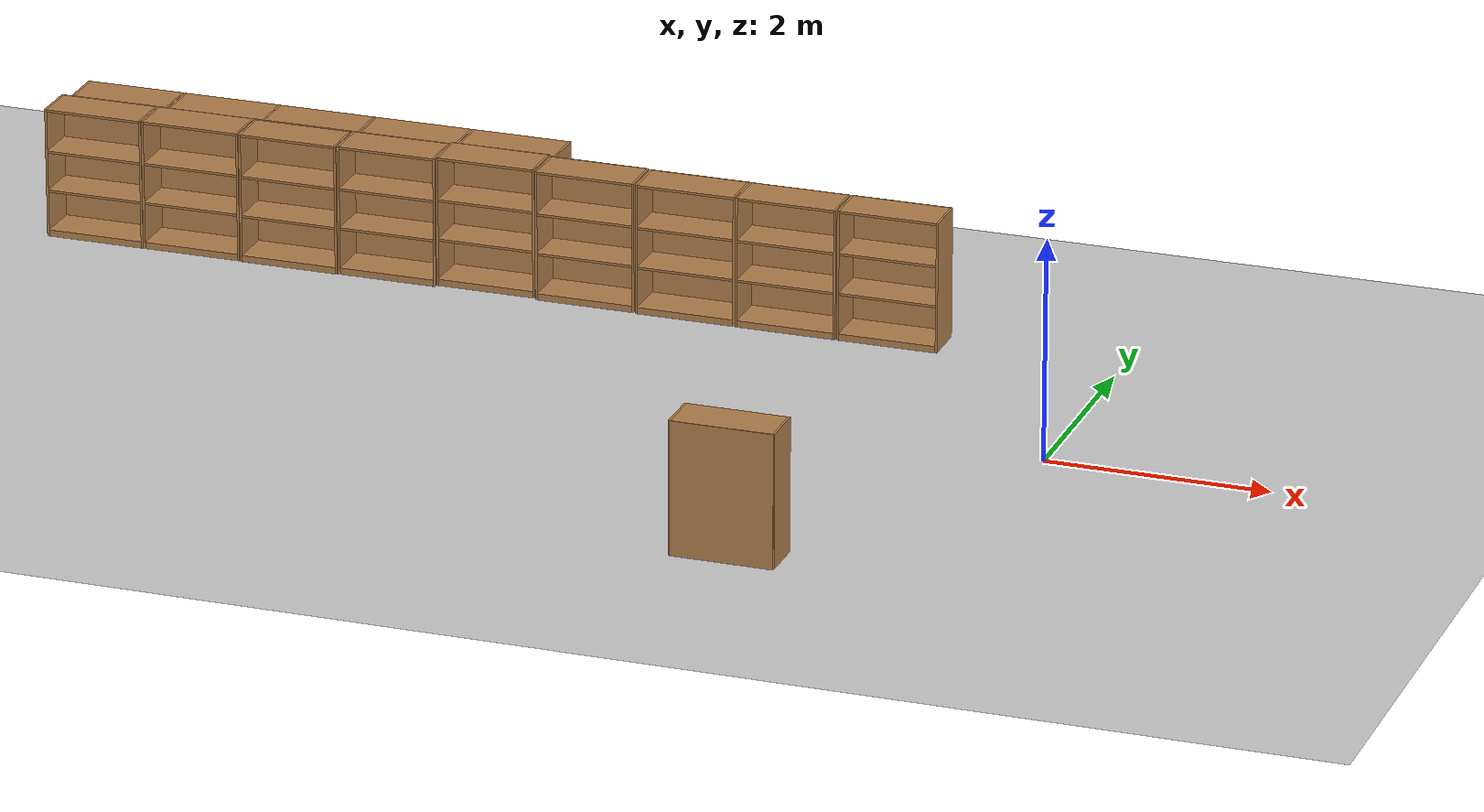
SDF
<sdf version="1.7">
 <world name="default">
  <model name="ground_plane">
   <static>1</static>
   <link name="link">
    <collision name="collision">
     <geometry><plane><normal>0 0 1</normal><size>100 100</size></plane></geometry>
     <surface><friction><ode><mu>100</mu><mu2>50</mu2></ode></friction></surface>
    </collision>
    <visual name="visual">
     <cast_shadows>0</cast_shadows>
     <geometry><plane><normal>0 0 1</normal><size>100 100</size></plane></geometry>
     <material>
      <script><uri>file://media/materials/scripts/gazebo.material</uri><name>Gazebo/Grey</name></script>
     </material>
    </visual>
   </link>
  </model>
  <model name="bookshelf_clone_0_clone_0_clone_clone_clone_clone_clone_0">
   <static>1</static>
   <link name="link">
    <inertial><mass>1</mass></inertial>
    <collision name="back">
     <pose>0 0.005 0.6 0 -0 0</pose>
     <geometry><box><size>0.9 0.01 1.2</size></box></geometry>
    </collision>
    <visual name="visual1">
     <pose>0 0.005 0.6 0 -0 0</pose>
     <geometry><box><size>0.9 0.01 1.2</size></box></geometry>
     <material>
      <script><uri>file://media/materials/scripts/gazebo.material</uri><name>Gazebo/Wood</name></script>
     </material>
    </visual>
    <collision name="left_side">
     <pose>0.45 -0.195 0.6 0 -0 0</pose>
     <geometry><box><size>0.02 0.4 1.2</size></box></geometry>
    </collision>
    <visual name="visual2">
     <pose>0.45 -0.195 0.6 0 -0 0</pose>
     <geometry><box><size>0.02 0.4 1.2</size></box></geometry>
     <material>
      <script><uri>file://media/materials/scripts/gazebo.material</uri><name>Gazebo/Wood</name></script>
     </material>
    </visual>
    <collision name="right_side">
     <pose>-0.45 -0.195 0.6 0 -0 0</pose>
     <geometry><box><size>0.02 0.4 1.2</size></box></geometry>
    </collision>
    <visual name="visual3">
     <pose>-0.45 -0.195 0.6 0 -0 0</pose>
     <geometry><box><size>0.02 0.4 1.2</size></box></geometry>
     <material>
      <script><uri>file://media/materials/scripts/gazebo.material</uri><name>Gazebo/Wood</name></script>
     </material>
    </visual>
    <collision name="bottom">
     <pose>0 -0.195 0.03 0 -0 0</pose>
     <geometry><box><size>0.88 0.4 0.06</size></box></geometry>
    </collision>
    <visual name="visual4">
     <pose>0 -0.195 0.03 0 -0 0</pose>
     <geometry><box><size>0.88 0.4 0.06</size></box></geometry>
     <material>
      <script><uri>file://media/materials/scripts/gazebo.material</uri><name>Gazebo/Wood</name></script>
     </material>
    </visual>
    <collision name="top">
     <pose>0 -0.195 1.19 0 -0 0</pose>
     <geometry><box><size>0.88 0.4 0.02</size></box></geometry>
    </collision>
    <visual name="visual5">
     <pose>0 -0.195 1.19 0 -0 0</pose>
     <geometry><box><size>0.88 0.4 0.02</size></box></geometry>
     <material>
      <script><uri>file://media/materials/scripts/gazebo.material</uri><name>Gazebo/Wood</name></script>
     </material>
    </visual>
    <collision name="low_shelf">
     <pose>0 -0.195 0.43 0 -0 0</pose>
     <geometry><box><size>0.88 0.4 0.02</size></box></geometry>
    </collision>
    <visual name="visual6">
     <pose>0 -0.195 0.43 0 -0 0</pose>
     <geometry><box><size>0.88 0.4 0.02</size></box></geometry>
     <material>
      <script><uri>file://media/materials/scripts/gazebo.material</uri><name>Gazebo/Wood</name></script>
     </material>
    </visual>
    <collision name="high_shelf">
     <pose>0 -0.195 0.8 0 -0 0</pose>
     <geometry><box><size>0.88 0.4 0.02</size></box></geometry>
    </collision>
    <visual name="visual7">
     <pose>0 -0.195 0.8 0 -0 0</pose>
     <geometry><box><size>0.88 0.4 0.02</size></box></geometry>
     <material>
      <script><uri>file://media/materials/scripts/gazebo.material</uri><name>Gazebo/Wood</name></script>
     </material>
    </visual>
   </link>
   <pose>-1.84141 -2.94994 0 0 0 -3.14107</pose>
  </model>
  <model name="bookshelf_clone_0_clone_0_clone_clone_clone_clone_clone_1_clone_clone_clone_clone_clone_clone_clone_clone">
   <static>1</static>
   <link name="link">
    <inertial><mass>1</mass></inertial>
    <collision name="back">
     <pose>0 0.005 0.6 0 -0 0</pose>
     <geometry><box><size>0.9 0.01 1.2</size></box></geometry>
    </collision>
    <visual name="visual1">
     <pose>0 0.005 0.6 0 -0 0</pose>
     <geometry><box><size>0.9 0.01 1.2</size></box></geometry>
     <material>
      <script><uri>file://media/materials/scripts/gazebo.material</uri><name>Gazebo/Wood</name></script>
     </material>
    </visual>
    <collision name="left_side">
     <pose>0.45 -0.195 0.6 0 -0 0</pose>
     <geometry><box><size>0.02 0.4 1.2</size></box></geometry>
    </collision>
    <visual name="visual2">
     <pose>0.45 -0.195 0.6 0 -0 0</pose>
     <geometry><box><size>0.02 0.4 1.2</size></box></geometry>
     <material>
      <script><uri>file://media/materials/scripts/gazebo.material</uri><name>Gazebo/Wood</name></script>
     </material>
    </visual>
    <collision name="right_side">
     <pose>-0.45 -0.195 0.6 0 -0 0</pose>
     <geometry><box><size>0.02 0.4 1.2</size></box></geometry>
    </collision>
    <visual name="visual3">
     <pose>-0.45 -0.195 0.6 0 -0 0</pose>
     <geometry><box><size>0.02 0.4 1.2</size></box></geometry>
     <material>
      <script><uri>file://media/materials/scripts/gazebo.material</uri><name>Gazebo/Wood</name></script>
     </material>
    </visual>
    <collision name="bottom">
     <pose>0 -0.195 0.03 0 -0 0</pose>
     <geometry><box><size>0.88 0.4 0.06</size></box></geometry>
    </collision>
    <visual name="visual4">
     <pose>0 -0.195 0.03 0 -0 0</pose>
     <geometry><box><size>0.88 0.4 0.06</size></box></geometry>
     <material>
      <script><uri>file://media/materials/scripts/gazebo.material</uri><name>Gazebo/Wood</name></script>
     </material>
    </visual>
    <collision name="top">
     <pose>0 -0.195 1.19 0 -0 0</pose>
     <geometry><box><size>0.88 0.4 0.02</size></box></geometry>
    </collision>
    <visual name="visual5">
     <pose>0 -0.195 1.19 0 -0 0</pose>
     <geometry><box><size>0.88 0.4 0.02</size></box></geometry>
     <material>
      <script><uri>file://media/materials/scripts/gazebo.material</uri><name>Gazebo/Wood</name></script>
     </material>
    </visual>
    <collision name="low_shelf">
     <pose>0 -0.195 0.43 0 -0 0</pose>
     <geometry><box><size>0.88 0.4 0.02</size></box></geometry>
    </collision>
    <visual name="visual6">
     <pose>0 -0.195 0.43 0 -0 0</pose>
     <geometry><box><size>0.88 0.4 0.02</size></box></geometry>
     <material>
      <script><uri>file://media/materials/scripts/gazebo.material</uri><name>Gazebo/Wood</name></script>
     </material>
    </visual>
    <collision name="high_shelf">
     <pose>0 -0.195 0.8 0 -0 0</pose>
     <geometry><box><size>0.88 0.4 0.02</size></box></geometry>
    </collision>
    <visual name="visual7">
     <pose>0 -0.195 0.8 0 -0 0</pose>
     <geometry><box><size>0.88 0.4 0.02</size></box></geometry>
     <material>
      <script><uri>file://media/materials/scripts/gazebo.material</uri><name>Gazebo/Wood</name></script>
     </material>
    </visual>
   </link>
   <pose>-9.47884 2.4081 0.004614 0 -0 0.000147</pose>
  </model>
  <model name="bookshelf_clone_0_clone_0_clone_clone_clone_clone_clone_1_clone_clone_clone_clone_clone_clone_clone_clone_clone">
   <static>1</static>
   <link name="link">
    <inertial><mass>1</mass></inertial>
    <collision name="back">
     <pose>0 0.005 0.6 0 -0 0</pose>
     <geometry><box><size>0.9 0.01 1.2</size></box></geometry>
    </collision>
    <visual name="visual1">
     <pose>0 0.005 0.6 0 -0 0</pose>
     <geometry><box><size>0.9 0.01 1.2</size></box></geometry>
     <material>
      <script><uri>file://media/materials/scripts/gazebo.material</uri><name>Gazebo/Wood</name></script>
     </material>
    </visual>
    <collision name="left_side">
     <pose>0.45 -0.195 0.6 0 -0 0</pose>
     <geometry><box><size>0.02 0.4 1.2</size></box></geometry>
    </collision>
    <visual name="visual2">
     <pose>0.45 -0.195 0.6 0 -0 0</pose>
     <geometry><box><size>0.02 0.4 1.2</size></box></geometry>
     <material>
      <script><uri>file://media/materials/scripts/gazebo.material</uri><name>Gazebo/Wood</name></script>
     </material>
    </visual>
    <collision name="right_side">
     <pose>-0.45 -0.195 0.6 0 -0 0</pose>
     <geometry><box><size>0.02 0.4 1.2</size></box></geometry>
    </collision>
    <visual name="visual3">
     <pose>-0.45 -0.195 0.6 0 -0 0</pose>
     <geometry><box><size>0.02 0.4 1.2</size></box></geometry>
     <material>
      <script><uri>file://media/materials/scripts/gazebo.material</uri><name>Gazebo/Wood</name></script>
     </material>
    </visual>
    <collision name="bottom">
     <pose>0 -0.195 0.03 0 -0 0</pose>
     <geometry><box><size>0.88 0.4 0.06</size></box></geometry>
    </collision>
    <visual name="visual4">
     <pose>0 -0.195 0.03 0 -0 0</pose>
     <geometry><box><size>0.88 0.4 0.06</size></box></geometry>
     <material>
      <script><uri>file://media/materials/scripts/gazebo.material</uri><name>Gazebo/Wood</name></script>
     </material>
    </visual>
    <collision name="top">
     <pose>0 -0.195 1.19 0 -0 0</pose>
     <geometry><box><size>0.88 0.4 0.02</size></box></geometry>
    </collision>
    <visual name="visual5">
     <pose>0 -0.195 1.19 0 -0 0</pose>
     <geometry><box><size>0.88 0.4 0.02</size></box></geometry>
     <material>
      <script><uri>file://media/materials/scripts/gazebo.material</uri><name>Gazebo/Wood</name></script>
     </material>
    </visual>
    <collision name="low_shelf">
     <pose>0 -0.195 0.43 0 -0 0</pose>
     <geometry><box><size>0.88 0.4 0.02</size></box></geometry>
    </collision>
    <visual name="visual6">
     <pose>0 -0.195 0.43 0 -0 0</pose>
     <geometry><box><size>0.88 0.4 0.02</size></box></geometry>
     <material>
      <script><uri>file://media/materials/scripts/gazebo.material</uri><name>Gazebo/Wood</name></script>
     </material>
    </visual>
    <collision name="high_shelf">
     <pose>0 -0.195 0.8 0 -0 0</pose>
     <geometry><box><size>0.88 0.4 0.02</size></box></geometry>
    </collision>
    <visual name="visual7">
     <pose>0 -0.195 0.8 0 -0 0</pose>
     <geometry><box><size>0.88 0.4 0.02</size></box></geometry>
     <material>
      <script><uri>file://media/materials/scripts/gazebo.material</uri><name>Gazebo/Wood</name></script>
     </material>
    </visual>
   </link>
   <pose>-8.55697 2.41061 0.004614 0 -0 0.000147</pose>
  </model>
  <model name="bookshelf_clone_0_clone_0_clone_clone_clone_clone_clone_1_clone_clone_clone_clone_clone_clone_clone_clone_clone_clone">
   <static>1</static>
   <link name="link">
    <inertial><mass>1</mass></inertial>
    <collision name="back">
     <pose>0 0.005 0.6 0 -0 0</pose>
     <geometry><box><size>0.9 0.01 1.2</size></box></geometry>
    </collision>
    <visual name="visual1">
     <pose>0 0.005 0.6 0 -0 0</pose>
     <geometry><box><size>0.9 0.01 1.2</size></box></geometry>
     <material>
      <script><uri>file://media/materials/scripts/gazebo.material</uri><name>Gazebo/Wood</name></script>
     </material>
    </visual>
    <collision name="left_side">
     <pose>0.45 -0.195 0.6 0 -0 0</pose>
     <geometry><box><size>0.02 0.4 1.2</size></box></geometry>
    </collision>
    <visual name="visual2">
     <pose>0.45 -0.195 0.6 0 -0 0</pose>
     <geometry><box><size>0.02 0.4 1.2</size></box></geometry>
     <material>
      <script><uri>file://media/materials/scripts/gazebo.material</uri><name>Gazebo/Wood</name></script>
     </material>
    </visual>
    <collision name="right_side">
     <pose>-0.45 -0.195 0.6 0 -0 0</pose>
     <geometry><box><size>0.02 0.4 1.2</size></box></geometry>
    </collision>
    <visual name="visual3">
     <pose>-0.45 -0.195 0.6 0 -0 0</pose>
     <geometry><box><size>0.02 0.4 1.2</size></box></geometry>
     <material>
      <script><uri>file://media/materials/scripts/gazebo.material</uri><name>Gazebo/Wood</name></script>
     </material>
    </visual>
    <collision name="bottom">
     <pose>0 -0.195 0.03 0 -0 0</pose>
     <geometry><box><size>0.88 0.4 0.06</size></box></geometry>
    </collision>
    <visual name="visual4">
     <pose>0 -0.195 0.03 0 -0 0</pose>
     <geometry><box><size>0.88 0.4 0.06</size></box></geometry>
     <material>
      <script><uri>file://media/materials/scripts/gazebo.material</uri><name>Gazebo/Wood</name></script>
     </material>
    </visual>
    <collision name="top">
     <pose>0 -0.195 1.19 0 -0 0</pose>
     <geometry><box><size>0.88 0.4 0.02</size></box></geometry>
    </collision>
    <visual name="visual5">
     <pose>0 -0.195 1.19 0 -0 0</pose>
     <geometry><box><size>0.88 0.4 0.02</size></box></geometry>
     <material>
      <script><uri>file://media/materials/scripts/gazebo.material</uri><name>Gazebo/Wood</name></script>
     </material>
    </visual>
    <collision name="low_shelf">
     <pose>0 -0.195 0.43 0 -0 0</pose>
     <geometry><box><size>0.88 0.4 0.02</size></box></geometry>
    </collision>
    <visual name="visual6">
     <pose>0 -0.195 0.43 0 -0 0</pose>
     <geometry><box><size>0.88 0.4 0.02</size></box></geometry>
     <material>
      <script><uri>file://media/materials/scripts/gazebo.material</uri><name>Gazebo/Wood</name></script>
     </material>
    </visual>
    <collision name="high_shelf">
     <pose>0 -0.195 0.8 0 -0 0</pose>
     <geometry><box><size>0.88 0.4 0.02</size></box></geometry>
    </collision>
    <visual name="visual7">
     <pose>0 -0.195 0.8 0 -0 0</pose>
     <geometry><box><size>0.88 0.4 0.02</size></box></geometry>
     <material>
      <script><uri>file://media/materials/scripts/gazebo.material</uri><name>Gazebo/Wood</name></script>
     </material>
    </visual>
   </link>
   <pose>-7.627 2.40051 0.004614 0 -0 0.000147</pose>
  </model>
  <model name="bookshelf_clone_0_clone_0_clone_clone_clone_clone_clone_1_clone_clone_clone_clone_clone_clone_clone_clone_clone_clone_0">
   <static>1</static>
   <link name="link">
    <inertial><mass>1</mass></inertial>
    <collision name="back">
     <pose>0 0.005 0.6 0 -0 0</pose>
     <geometry><box><size>0.9 0.01 1.2</size></box></geometry>
    </collision>
    <visual name="visual1">
     <pose>0 0.005 0.6 0 -0 0</pose>
     <geometry><box><size>0.9 0.01 1.2</size></box></geometry>
     <material>
      <script><uri>file://media/materials/scripts/gazebo.material</uri><name>Gazebo/Wood</name></script>
     </material>
    </visual>
    <collision name="left_side">
     <pose>0.45 -0.195 0.6 0 -0 0</pose>
     <geometry><box><size>0.02 0.4 1.2</size></box></geometry>
    </collision>
    <visual name="visual2">
     <pose>0.45 -0.195 0.6 0 -0 0</pose>
     <geometry><box><size>0.02 0.4 1.2</size></box></geometry>
     <material>
      <script><uri>file://media/materials/scripts/gazebo.material</uri><name>Gazebo/Wood</name></script>
     </material>
    </visual>
    <collision name="right_side">
     <pose>-0.45 -0.195 0.6 0 -0 0</pose>
     <geometry><box><size>0.02 0.4 1.2</size></box></geometry>
    </collision>
    <visual name="visual3">
     <pose>-0.45 -0.195 0.6 0 -0 0</pose>
     <geometry><box><size>0.02 0.4 1.2</size></box></geometry>
     <material>
      <script><uri>file://media/materials/scripts/gazebo.material</uri><name>Gazebo/Wood</name></script>
     </material>
    </visual>
    <collision name="bottom">
     <pose>0 -0.195 0.03 0 -0 0</pose>
     <geometry><box><size>0.88 0.4 0.06</size></box></geometry>
    </collision>
    <visual name="visual4">
     <pose>0 -0.195 0.03 0 -0 0</pose>
     <geometry><box><size>0.88 0.4 0.06</size></box></geometry>
     <material>
      <script><uri>file://media/materials/scripts/gazebo.material</uri><name>Gazebo/Wood</name></script>
     </material>
    </visual>
    <collision name="top">
     <pose>0 -0.195 1.19 0 -0 0</pose>
     <geometry><box><size>0.88 0.4 0.02</size></box></geometry>
    </collision>
    <visual name="visual5">
     <pose>0 -0.195 1.19 0 -0 0</pose>
     <geometry><box><size>0.88 0.4 0.02</size></box></geometry>
     <material>
      <script><uri>file://media/materials/scripts/gazebo.material</uri><name>Gazebo/Wood</name></script>
     </material>
    </visual>
    <collision name="low_shelf">
     <pose>0 -0.195 0.43 0 -0 0</pose>
     <geometry><box><size>0.88 0.4 0.02</size></box></geometry>
    </collision>
    <visual name="visual6">
     <pose>0 -0.195 0.43 0 -0 0</pose>
     <geometry><box><size>0.88 0.4 0.02</size></box></geometry>
     <material>
      <script><uri>file://media/materials/scripts/gazebo.material</uri><name>Gazebo/Wood</name></script>
     </material>
    </visual>
    <collision name="high_shelf">
     <pose>0 -0.195 0.8 0 -0 0</pose>
     <geometry><box><size>0.88 0.4 0.02</size></box></geometry>
    </collision>
    <visual name="visual7">
     <pose>0 -0.195 0.8 0 -0 0</pose>
     <geometry><box><size>0.88 0.4 0.02</size></box></geometry>
     <material>
      <script><uri>file://media/materials/scripts/gazebo.material</uri><name>Gazebo/Wood</name></script>
     </material>
    </visual>
   </link>
   <pose>-6.70097 2.41106 0.004614 0 -0 0.000147</pose>
  </model>
  <model name="bookshelf_clone_0_clone_0_clone_clone_clone_clone_clone_1_clone_clone_clone_clone_clone_clone_clone_clone_clone_clone_0_clone">
   <static>1</static>
   <link name="link">
    <inertial><mass>1</mass></inertial>
    <collision name="back">
     <pose>0 0.005 0.6 0 -0 0</pose>
     <geometry><box><size>0.9 0.01 1.2</size></box></geometry>
    </collision>
    <visual name="visual1">
     <pose>0 0.005 0.6 0 -0 0</pose>
     <geometry><box><size>0.9 0.01 1.2</size></box></geometry>
     <material>
      <script><uri>file://media/materials/scripts/gazebo.material</uri><name>Gazebo/Wood</name></script>
     </material>
    </visual>
    <collision name="left_side">
     <pose>0.45 -0.195 0.6 0 -0 0</pose>
     <geometry><box><size>0.02 0.4 1.2</size></box></geometry>
    </collision>
    <visual name="visual2">
     <pose>0.45 -0.195 0.6 0 -0 0</pose>
     <geometry><box><size>0.02 0.4 1.2</size></box></geometry>
     <material>
      <script><uri>file://media/materials/scripts/gazebo.material</uri><name>Gazebo/Wood</name></script>
     </material>
    </visual>
    <collision name="right_side">
     <pose>-0.45 -0.195 0.6 0 -0 0</pose>
     <geometry><box><size>0.02 0.4 1.2</size></box></geometry>
    </collision>
    <visual name="visual3">
     <pose>-0.45 -0.195 0.6 0 -0 0</pose>
     <geometry><box><size>0.02 0.4 1.2</size></box></geometry>
     <material>
      <script><uri>file://media/materials/scripts/gazebo.material</uri><name>Gazebo/Wood</name></script>
     </material>
    </visual>
    <collision name="bottom">
     <pose>0 -0.195 0.03 0 -0 0</pose>
     <geometry><box><size>0.88 0.4 0.06</size></box></geometry>
    </collision>
    <visual name="visual4">
     <pose>0 -0.195 0.03 0 -0 0</pose>
     <geometry><box><size>0.88 0.4 0.06</size></box></geometry>
     <material>
      <script><uri>file://media/materials/scripts/gazebo.material</uri><name>Gazebo/Wood</name></script>
     </material>
    </visual>
    <collision name="top">
     <pose>0 -0.195 1.19 0 -0 0</pose>
     <geometry><box><size>0.88 0.4 0.02</size></box></geometry>
    </collision>
    <visual name="visual5">
     <pose>0 -0.195 1.19 0 -0 0</pose>
     <geometry><box><size>0.88 0.4 0.02</size></box></geometry>
     <material>
      <script><uri>file://media/materials/scripts/gazebo.material</uri><name>Gazebo/Wood</name></script>
     </material>
    </visual>
    <collision name="low_shelf">
     <pose>0 -0.195 0.43 0 -0 0</pose>
     <geometry><box><size>0.88 0.4 0.02</size></box></geometry>
    </collision>
    <visual name="visual6">
     <pose>0 -0.195 0.43 0 -0 0</pose>
     <geometry><box><size>0.88 0.4 0.02</size></box></geometry>
     <material>
      <script><uri>file://media/materials/scripts/gazebo.material</uri><name>Gazebo/Wood</name></script>
     </material>
    </visual>
    <collision name="high_shelf">
     <pose>0 -0.195 0.8 0 -0 0</pose>
     <geometry><box><size>0.88 0.4 0.02</size></box></geometry>
    </collision>
    <visual name="visual7">
     <pose>0 -0.195 0.8 0 -0 0</pose>
     <geometry><box><size>0.88 0.4 0.02</size></box></geometry>
     <material>
      <script><uri>file://media/materials/scripts/gazebo.material</uri><name>Gazebo/Wood</name></script>
     </material>
    </visual>
   </link>
   <pose>-5.7728 2.41169 0.019643 0 -0 0.000147</pose>
  </model>
  <model name="bookshelf_clone_0_clone_0_clone_clone_clone_clone_clone_1_clone_clone_clone_clone_clone_clone_clone_clone_clone_clone_0_clone_clone">
   <static>1</static>
   <link name="link">
    <inertial><mass>1</mass></inertial>
    <collision name="back">
     <pose>0 0.005 0.6 0 -0 0</pose>
     <geometry><box><size>0.9 0.01 1.2</size></box></geometry>
    </collision>
    <visual name="visual1">
     <pose>0 0.005 0.6 0 -0 0</pose>
     <geometry><box><size>0.9 0.01 1.2</size></box></geometry>
     <material>
      <script><uri>file://media/materials/scripts/gazebo.material</uri><name>Gazebo/Wood</name></script>
     </material>
    </visual>
    <collision name="left_side">
     <pose>0.45 -0.195 0.6 0 -0 0</pose>
     <geometry><box><size>0.02 0.4 1.2</size></box></geometry>
    </collision>
    <visual name="visual2">
     <pose>0.45 -0.195 0.6 0 -0 0</pose>
     <geometry><box><size>0.02 0.4 1.2</size></box></geometry>
     <material>
      <script><uri>file://media/materials/scripts/gazebo.material</uri><name>Gazebo/Wood</name></script>
     </material>
    </visual>
    <collision name="right_side">
     <pose>-0.45 -0.195 0.6 0 -0 0</pose>
     <geometry><box><size>0.02 0.4 1.2</size></box></geometry>
    </collision>
    <visual name="visual3">
     <pose>-0.45 -0.195 0.6 0 -0 0</pose>
     <geometry><box><size>0.02 0.4 1.2</size></box></geometry>
     <material>
      <script><uri>file://media/materials/scripts/gazebo.material</uri><name>Gazebo/Wood</name></script>
     </material>
    </visual>
    <collision name="bottom">
     <pose>0 -0.195 0.03 0 -0 0</pose>
     <geometry><box><size>0.88 0.4 0.06</size></box></geometry>
    </collision>
    <visual name="visual4">
     <pose>0 -0.195 0.03 0 -0 0</pose>
     <geometry><box><size>0.88 0.4 0.06</size></box></geometry>
     <material>
      <script><uri>file://media/materials/scripts/gazebo.material</uri><name>Gazebo/Wood</name></script>
     </material>
    </visual>
    <collision name="top">
     <pose>0 -0.195 1.19 0 -0 0</pose>
     <geometry><box><size>0.88 0.4 0.02</size></box></geometry>
    </collision>
    <visual name="visual5">
     <pose>0 -0.195 1.19 0 -0 0</pose>
     <geometry><box><size>0.88 0.4 0.02</size></box></geometry>
     <material>
      <script><uri>file://media/materials/scripts/gazebo.material</uri><name>Gazebo/Wood</name></script>
     </material>
    </visual>
    <collision name="low_shelf">
     <pose>0 -0.195 0.43 0 -0 0</pose>
     <geometry><box><size>0.88 0.4 0.02</size></box></geometry>
    </collision>
    <visual name="visual6">
     <pose>0 -0.195 0.43 0 -0 0</pose>
     <geometry><box><size>0.88 0.4 0.02</size></box></geometry>
     <material>
      <script><uri>file://media/materials/scripts/gazebo.material</uri><name>Gazebo/Wood</name></script>
     </material>
    </visual>
    <collision name="high_shelf">
     <pose>0 -0.195 0.8 0 -0 0</pose>
     <geometry><box><size>0.88 0.4 0.02</size></box></geometry>
    </collision>
    <visual name="visual7">
     <pose>0 -0.195 0.8 0 -0 0</pose>
     <geometry><box><size>0.88 0.4 0.02</size></box></geometry>
     <material>
      <script><uri>file://media/materials/scripts/gazebo.material</uri><name>Gazebo/Wood</name></script>
     </material>
    </visual>
   </link>
   <pose>-4.84957 2.41459 0.004614 0 -0 0.000147</pose>
  </model>
  <model name="bookshelf_clone_0_clone_0_clone_clone_clone_clone_clone_1_clone_clone_clone_clone_clone_clone_clone_clone_clone_clone_0_clone_clone_clone">
   <static>1</static>
   <link name="link">
    <inertial><mass>1</mass></inertial>
    <collision name="back">
     <pose>0 0.005 0.6 0 -0 0</pose>
     <geometry><box><size>0.9 0.01 1.2</size></box></geometry>
    </collision>
    <visual name="visual1">
     <pose>0 0.005 0.6 0 -0 0</pose>
     <geometry><box><size>0.9 0.01 1.2</size></box></geometry>
     <material>
      <script><uri>file://media/materials/scripts/gazebo.material</uri><name>Gazebo/Wood</name></script>
     </material>
    </visual>
    <collision name="left_side">
     <pose>0.45 -0.195 0.6 0 -0 0</pose>
     <geometry><box><size>0.02 0.4 1.2</size></box></geometry>
    </collision>
    <visual name="visual2">
     <pose>0.45 -0.195 0.6 0 -0 0</pose>
     <geometry><box><size>0.02 0.4 1.2</size></box></geometry>
     <material>
      <script><uri>file://media/materials/scripts/gazebo.material</uri><name>Gazebo/Wood</name></script>
     </material>
    </visual>
    <collision name="right_side">
     <pose>-0.45 -0.195 0.6 0 -0 0</pose>
     <geometry><box><size>0.02 0.4 1.2</size></box></geometry>
    </collision>
    <visual name="visual3">
     <pose>-0.45 -0.195 0.6 0 -0 0</pose>
     <geometry><box><size>0.02 0.4 1.2</size></box></geometry>
     <material>
      <script><uri>file://media/materials/scripts/gazebo.material</uri><name>Gazebo/Wood</name></script>
     </material>
    </visual>
    <collision name="bottom">
     <pose>0 -0.195 0.03 0 -0 0</pose>
     <geometry><box><size>0.88 0.4 0.06</size></box></geometry>
    </collision>
    <visual name="visual4">
     <pose>0 -0.195 0.03 0 -0 0</pose>
     <geometry><box><size>0.88 0.4 0.06</size></box></geometry>
     <material>
      <script><uri>file://media/materials/scripts/gazebo.material</uri><name>Gazebo/Wood</name></script>
     </material>
    </visual>
    <collision name="top">
     <pose>0 -0.195 1.19 0 -0 0</pose>
     <geometry><box><size>0.88 0.4 0.02</size></box></geometry>
    </collision>
    <visual name="visual5">
     <pose>0 -0.195 1.19 0 -0 0</pose>
     <geometry><box><size>0.88 0.4 0.02</size></box></geometry>
     <material>
      <script><uri>file://media/materials/scripts/gazebo.material</uri><name>Gazebo/Wood</name></script>
     </material>
    </visual>
    <collision name="low_shelf">
     <pose>0 -0.195 0.43 0 -0 0</pose>
     <geometry><box><size>0.88 0.4 0.02</size></box></geometry>
    </collision>
    <visual name="visual6">
     <pose>0 -0.195 0.43 0 -0 0</pose>
     <geometry><box><size>0.88 0.4 0.02</size></box></geometry>
     <material>
      <script><uri>file://media/materials/scripts/gazebo.material</uri><name>Gazebo/Wood</name></script>
     </material>
    </visual>
    <collision name="high_shelf">
     <pose>0 -0.195 0.8 0 -0 0</pose>
     <geometry><box><size>0.88 0.4 0.02</size></box></geometry>
    </collision>
    <visual name="visual7">
     <pose>0 -0.195 0.8 0 -0 0</pose>
     <geometry><box><size>0.88 0.4 0.02</size></box></geometry>
     <material>
      <script><uri>file://media/materials/scripts/gazebo.material</uri><name>Gazebo/Wood</name></script>
     </material>
    </visual>
   </link>
   <pose>-3.91403 2.40103 0.004614 0 -0 0.000147</pose>
  </model>
  <model name="bookshelf_clone_0_clone_0_clone_clone_clone_clone_clone_1_clone_clone_clone_clone_clone_clone_clone_clone_clone_clone_0_clone_clone_clone_clone">
   <static>1</static>
   <link name="link">
    <inertial><mass>1</mass></inertial>
    <collision name="back">
     <pose>0 0.005 0.6 0 -0 0</pose>
     <geometry><box><size>0.9 0.01 1.2</size></box></geometry>
    </collision>
    <visual name="visual1">
     <pose>0 0.005 0.6 0 -0 0</pose>
     <geometry><box><size>0.9 0.01 1.2</size></box></geometry>
     <material>
      <script><uri>file://media/materials/scripts/gazebo.material</uri><name>Gazebo/Wood</name></script>
     </material>
    </visual>
    <collision name="left_side">
     <pose>0.45 -0.195 0.6 0 -0 0</pose>
     <geometry><box><size>0.02 0.4 1.2</size></box></geometry>
    </collision>
    <visual name="visual2">
     <pose>0.45 -0.195 0.6 0 -0 0</pose>
     <geometry><box><size>0.02 0.4 1.2</size></box></geometry>
     <material>
      <script><uri>file://media/materials/scripts/gazebo.material</uri><name>Gazebo/Wood</name></script>
     </material>
    </visual>
    <collision name="right_side">
     <pose>-0.45 -0.195 0.6 0 -0 0</pose>
     <geometry><box><size>0.02 0.4 1.2</size></box></geometry>
    </collision>
    <visual name="visual3">
     <pose>-0.45 -0.195 0.6 0 -0 0</pose>
     <geometry><box><size>0.02 0.4 1.2</size></box></geometry>
     <material>
      <script><uri>file://media/materials/scripts/gazebo.material</uri><name>Gazebo/Wood</name></script>
     </material>
    </visual>
    <collision name="bottom">
     <pose>0 -0.195 0.03 0 -0 0</pose>
     <geometry><box><size>0.88 0.4 0.06</size></box></geometry>
    </collision>
    <visual name="visual4">
     <pose>0 -0.195 0.03 0 -0 0</pose>
     <geometry><box><size>0.88 0.4 0.06</size></box></geometry>
     <material>
      <script><uri>file://media/materials/scripts/gazebo.material</uri><name>Gazebo/Wood</name></script>
     </material>
    </visual>
    <collision name="top">
     <pose>0 -0.195 1.19 0 -0 0</pose>
     <geometry><box><size>0.88 0.4 0.02</size></box></geometry>
    </collision>
    <visual name="visual5">
     <pose>0 -0.195 1.19 0 -0 0</pose>
     <geometry><box><size>0.88 0.4 0.02</size></box></geometry>
     <material>
      <script><uri>file://media/materials/scripts/gazebo.material</uri><name>Gazebo/Wood</name></script>
     </material>
    </visual>
    <collision name="low_shelf">
     <pose>0 -0.195 0.43 0 -0 0</pose>
     <geometry><box><size>0.88 0.4 0.02</size></box></geometry>
    </collision>
    <visual name="visual6">
     <pose>0 -0.195 0.43 0 -0 0</pose>
     <geometry><box><size>0.88 0.4 0.02</size></box></geometry>
     <material>
      <script><uri>file://media/materials/scripts/gazebo.material</uri><name>Gazebo/Wood</name></script>
     </material>
    </visual>
    <collision name="high_shelf">
     <pose>0 -0.195 0.8 0 -0 0</pose>
     <geometry><box><size>0.88 0.4 0.02</size></box></geometry>
    </collision>
    <visual name="visual7">
     <pose>0 -0.195 0.8 0 -0 0</pose>
     <geometry><box><size>0.88 0.4 0.02</size></box></geometry>
     <material>
      <script><uri>file://media/materials/scripts/gazebo.material</uri><name>Gazebo/Wood</name></script>
     </material>
    </visual>
   </link>
   <pose>-2.99111 2.39816 0.004614 0 -0 0.000147</pose>
  </model>
  <model name="bookshelf_clone_0_clone_0_clone_clone_clone_clone_clone_1_clone_clone_clone_clone_clone_clone_clone_clone_clone_clone_0_clone_clone_clone_clone_clone">
   <static>1</static>
   <link name="link">
    <inertial><mass>1</mass></inertial>
    <collision name="back">
     <pose>0 0.005 0.6 0 -0 0</pose>
     <geometry><box><size>0.9 0.01 1.2</size></box></geometry>
    </collision>
    <visual name="visual1">
     <pose>0 0.005 0.6 0 -0 0</pose>
     <geometry><box><size>0.9 0.01 1.2</size></box></geometry>
     <material>
      <script><uri>file://media/materials/scripts/gazebo.material</uri><name>Gazebo/Wood</name></script>
     </material>
    </visual>
    <collision name="left_side">
     <pose>0.45 -0.195 0.6 0 -0 0</pose>
     <geometry><box><size>0.02 0.4 1.2</size></box></geometry>
    </collision>
    <visual name="visual2">
     <pose>0.45 -0.195 0.6 0 -0 0</pose>
     <geometry><box><size>0.02 0.4 1.2</size></box></geometry>
     <material>
      <script><uri>file://media/materials/scripts/gazebo.material</uri><name>Gazebo/Wood</name></script>
     </material>
    </visual>
    <collision name="right_side">
     <pose>-0.45 -0.195 0.6 0 -0 0</pose>
     <geometry><box><size>0.02 0.4 1.2</size></box></geometry>
    </collision>
    <visual name="visual3">
     <pose>-0.45 -0.195 0.6 0 -0 0</pose>
     <geometry><box><size>0.02 0.4 1.2</size></box></geometry>
     <material>
      <script><uri>file://media/materials/scripts/gazebo.material</uri><name>Gazebo/Wood</name></script>
     </material>
    </visual>
    <collision name="bottom">
     <pose>0 -0.195 0.03 0 -0 0</pose>
     <geometry><box><size>0.88 0.4 0.06</size></box></geometry>
    </collision>
    <visual name="visual4">
     <pose>0 -0.195 0.03 0 -0 0</pose>
     <geometry><box><size>0.88 0.4 0.06</size></box></geometry>
     <material>
      <script><uri>file://media/materials/scripts/gazebo.material</uri><name>Gazebo/Wood</name></script>
     </material>
    </visual>
    <collision name="top">
     <pose>0 -0.195 1.19 0 -0 0</pose>
     <geometry><box><size>0.88 0.4 0.02</size></box></geometry>
    </collision>
    <visual name="visual5">
     <pose>0 -0.195 1.19 0 -0 0</pose>
     <geometry><box><size>0.88 0.4 0.02</size></box></geometry>
     <material>
      <script><uri>file://media/materials/scripts/gazebo.material</uri><name>Gazebo/Wood</name></script>
     </material>
    </visual>
    <collision name="low_shelf">
     <pose>0 -0.195 0.43 0 -0 0</pose>
     <geometry><box><size>0.88 0.4 0.02</size></box></geometry>
    </collision>
    <visual name="visual6">
     <pose>0 -0.195 0.43 0 -0 0</pose>
     <geometry><box><size>0.88 0.4 0.02</size></box></geometry>
     <material>
      <script><uri>file://media/materials/scripts/gazebo.material</uri><name>Gazebo/Wood</name></script>
     </material>
    </visual>
    <collision name="high_shelf">
     <pose>0 -0.195 0.8 0 -0 0</pose>
     <geometry><box><size>0.88 0.4 0.02</size></box></geometry>
    </collision>
    <visual name="visual7">
     <pose>0 -0.195 0.8 0 -0 0</pose>
     <geometry><box><size>0.88 0.4 0.02</size></box></geometry>
     <material>
      <script><uri>file://media/materials/scripts/gazebo.material</uri><name>Gazebo/Wood</name></script>
     </material>
    </visual>
   </link>
   <pose>-2.06102 2.40145 0.004614 0 -0 0.000147</pose>
  </model>
  <model name="bookshelf_clone_0_clone_0_clone_clone_clone_0_clone_clone_1_clone_0_clone_0_clone_clone_clone_0_clone_0">
   <static>1</static>
   <link name="link">
    <inertial><mass>1</mass></inertial>
    <collision name="back">
     <pose>0 0.005 0.6 0 -0 0</pose>
     <geometry><box><size>0.9 0.01 1.2</size></box></geometry>
    </collision>
    <visual name="visual1">
     <pose>0 0.005 0.6 0 -0 0</pose>
     <geometry><box><size>0.9 0.01 1.2</size></box></geometry>
     <material>
      <script><uri>file://media/materials/scripts/gazebo.material</uri><name>Gazebo/Wood</name></script>
     </material>
    </visual>
    <collision name="left_side">
     <pose>0.45 -0.195 0.6 0 -0 0</pose>
     <geometry><box><size>0.02 0.4 1.2</size></box></geometry>
    </collision>
    <visual name="visual2">
     <pose>0.45 -0.195 0.6 0 -0 0</pose>
     <geometry><box><size>0.02 0.4 1.2</size></box></geometry>
     <material>
      <script><uri>file://media/materials/scripts/gazebo.material</uri><name>Gazebo/Wood</name></script>
     </material>
    </visual>
    <collision name="right_side">
     <pose>-0.45 -0.195 0.6 0 -0 0</pose>
     <geometry><box><size>0.02 0.4 1.2</size></box></geometry>
    </collision>
    <visual name="visual3">
     <pose>-0.45 -0.195 0.6 0 -0 0</pose>
     <geometry><box><size>0.02 0.4 1.2</size></box></geometry>
     <material>
      <script><uri>file://media/materials/scripts/gazebo.material</uri><name>Gazebo/Wood</name></script>
     </material>
    </visual>
    <collision name="bottom">
     <pose>0 -0.195 0.03 0 -0 0</pose>
     <geometry><box><size>0.88 0.4 0.06</size></box></geometry>
    </collision>
    <visual name="visual4">
     <pose>0 -0.195 0.03 0 -0 0</pose>
     <geometry><box><size>0.88 0.4 0.06</size></box></geometry>
     <material>
      <script><uri>file://media/materials/scripts/gazebo.material</uri><name>Gazebo/Wood</name></script>
     </material>
    </visual>
    <collision name="top">
     <pose>0 -0.195 1.19 0 -0 0</pose>
     <geometry><box><size>0.88 0.4 0.02</size></box></geometry>
    </collision>
    <visual name="visual5">
     <pose>0 -0.195 1.19 0 -0 0</pose>
     <geometry><box><size>0.88 0.4 0.02</size></box></geometry>
     <material>
      <script><uri>file://media/materials/scripts/gazebo.material</uri><name>Gazebo/Wood</name></script>
     </material>
    </visual>
    <collision name="low_shelf">
     <pose>0 -0.195 0.43 0 -0 0</pose>
     <geometry><box><size>0.88 0.4 0.02</size></box></geometry>
    </collision>
    <visual name="visual6">
     <pose>0 -0.195 0.43 0 -0 0</pose>
     <geometry><box><size>0.88 0.4 0.02</size></box></geometry>
     <material>
      <script><uri>file://media/materials/scripts/gazebo.material</uri><name>Gazebo/Wood</name></script>
     </material>
    </visual>
    <collision name="high_shelf">
     <pose>0 -0.195 0.8 0 -0 0</pose>
     <geometry><box><size>0.88 0.4 0.02</size></box></geometry>
    </collision>
    <visual name="visual7">
     <pose>0 -0.195 0.8 0 -0 0</pose>
     <geometry><box><size>0.88 0.4 0.02</size></box></geometry>
     <material>
      <script><uri>file://media/materials/scripts/gazebo.material</uri><name>Gazebo/Wood</name></script>
     </material>
    </visual>
   </link>
   <pose>-5.72707 2.43762 0 0 0 -3.14107</pose>
  </model>
  <model name="bookshelf_clone_0_clone_0_clone_clone_clone_0_clone_clone_1_clone_0_clone_0_clone_clone_clone_0_clone_0_clone">
   <static>1</static>
   <link name="link">
    <inertial><mass>1</mass></inertial>
    <collision name="back">
     <pose>0 0.005 0.6 0 -0 0</pose>
     <geometry><box><size>0.9 0.01 1.2</size></box></geometry>
    </collision>
    <visual name="visual1">
     <pose>0 0.005 0.6 0 -0 0</pose>
     <geometry><box><size>0.9 0.01 1.2</size></box></geometry>
     <material>
      <script><uri>file://media/materials/scripts/gazebo.material</uri><name>Gazebo/Wood</name></script>
     </material>
    </visual>
    <collision name="left_side">
     <pose>0.45 -0.195 0.6 0 -0 0</pose>
     <geometry><box><size>0.02 0.4 1.2</size></box></geometry>
    </collision>
    <visual name="visual2">
     <pose>0.45 -0.195 0.6 0 -0 0</pose>
     <geometry><box><size>0.02 0.4 1.2</size></box></geometry>
     <material>
      <script><uri>file://media/materials/scripts/gazebo.material</uri><name>Gazebo/Wood</name></script>
     </material>
    </visual>
    <collision name="right_side">
     <pose>-0.45 -0.195 0.6 0 -0 0</pose>
     <geometry><box><size>0.02 0.4 1.2</size></box></geometry>
    </collision>
    <visual name="visual3">
     <pose>-0.45 -0.195 0.6 0 -0 0</pose>
     <geometry><box><size>0.02 0.4 1.2</size></box></geometry>
     <material>
      <script><uri>file://media/materials/scripts/gazebo.material</uri><name>Gazebo/Wood</name></script>
     </material>
    </visual>
    <collision name="bottom">
     <pose>0 -0.195 0.03 0 -0 0</pose>
     <geometry><box><size>0.88 0.4 0.06</size></box></geometry>
    </collision>
    <visual name="visual4">
     <pose>0 -0.195 0.03 0 -0 0</pose>
     <geometry><box><size>0.88 0.4 0.06</size></box></geometry>
     <material>
      <script><uri>file://media/materials/scripts/gazebo.material</uri><name>Gazebo/Wood</name></script>
     </material>
    </visual>
    <collision name="top">
     <pose>0 -0.195 1.19 0 -0 0</pose>
     <geometry><box><size>0.88 0.4 0.02</size></box></geometry>
    </collision>
    <visual name="visual5">
     <pose>0 -0.195 1.19 0 -0 0</pose>
     <geometry><box><size>0.88 0.4 0.02</size></box></geometry>
     <material>
      <script><uri>file://media/materials/scripts/gazebo.material</uri><name>Gazebo/Wood</name></script>
     </material>
    </visual>
    <collision name="low_shelf">
     <pose>0 -0.195 0.43 0 -0 0</pose>
     <geometry><box><size>0.88 0.4 0.02</size></box></geometry>
    </collision>
    <visual name="visual6">
     <pose>0 -0.195 0.43 0 -0 0</pose>
     <geometry><box><size>0.88 0.4 0.02</size></box></geometry>
     <material>
      <script><uri>file://media/materials/scripts/gazebo.material</uri><name>Gazebo/Wood</name></script>
     </material>
    </visual>
    <collision name="high_shelf">
     <pose>0 -0.195 0.8 0 -0 0</pose>
     <geometry><box><size>0.88 0.4 0.02</size></box></geometry>
    </collision>
    <visual name="visual7">
     <pose>0 -0.195 0.8 0 -0 0</pose>
     <geometry><box><size>0.88 0.4 0.02</size></box></geometry>
     <material>
      <script><uri>file://media/materials/scripts/gazebo.material</uri><name>Gazebo/Wood</name></script>
     </material>
    </visual>
   </link>
   <pose>-6.65048 2.43762 0 0 0 -3.14107</pose>
  </model>
  <model name="bookshelf_clone_0_clone_0_clone_clone_clone_0_clone_clone_1_clone_0_clone_0_clone_clone_clone_0_clone_0_clone_clone">
   <static>1</static>
   <link name="link">
    <inertial><mass>1</mass></inertial>
    <collision name="back">
     <pose>0 0.005 0.6 0 -0 0</pose>
     <geometry><box><size>0.9 0.01 1.2</size></box></geometry>
    </collision>
    <visual name="visual1">
     <pose>0 0.005 0.6 0 -0 0</pose>
     <geometry><box><size>0.9 0.01 1.2</size></box></geometry>
     <material>
      <script><uri>file://media/materials/scripts/gazebo.material</uri><name>Gazebo/Wood</name></script>
     </material>
    </visual>
    <collision name="left_side">
     <pose>0.45 -0.195 0.6 0 -0 0</pose>
     <geometry><box><size>0.02 0.4 1.2</size></box></geometry>
    </collision>
    <visual name="visual2">
     <pose>0.45 -0.195 0.6 0 -0 0</pose>
     <geometry><box><size>0.02 0.4 1.2</size></box></geometry>
     <material>
      <script><uri>file://media/materials/scripts/gazebo.material</uri><name>Gazebo/Wood</name></script>
     </material>
    </visual>
    <collision name="right_side">
     <pose>-0.45 -0.195 0.6 0 -0 0</pose>
     <geometry><box><size>0.02 0.4 1.2</size></box></geometry>
    </collision>
    <visual name="visual3">
     <pose>-0.45 -0.195 0.6 0 -0 0</pose>
     <geometry><box><size>0.02 0.4 1.2</size></box></geometry>
     <material>
      <script><uri>file://media/materials/scripts/gazebo.material</uri><name>Gazebo/Wood</name></script>
     </material>
    </visual>
    <collision name="bottom">
     <pose>0 -0.195 0.03 0 -0 0</pose>
     <geometry><box><size>0.88 0.4 0.06</size></box></geometry>
    </collision>
    <visual name="visual4">
     <pose>0 -0.195 0.03 0 -0 0</pose>
     <geometry><box><size>0.88 0.4 0.06</size></box></geometry>
     <material>
      <script><uri>file://media/materials/scripts/gazebo.material</uri><name>Gazebo/Wood</name></script>
     </material>
    </visual>
    <collision name="top">
     <pose>0 -0.195 1.19 0 -0 0</pose>
     <geometry><box><size>0.88 0.4 0.02</size></box></geometry>
    </collision>
    <visual name="visual5">
     <pose>0 -0.195 1.19 0 -0 0</pose>
     <geometry><box><size>0.88 0.4 0.02</size></box></geometry>
     <material>
      <script><uri>file://media/materials/scripts/gazebo.material</uri><name>Gazebo/Wood</name></script>
     </material>
    </visual>
    <collision name="low_shelf">
     <pose>0 -0.195 0.43 0 -0 0</pose>
     <geometry><box><size>0.88 0.4 0.02</size></box></geometry>
    </collision>
    <visual name="visual6">
     <pose>0 -0.195 0.43 0 -0 0</pose>
     <geometry><box><size>0.88 0.4 0.02</size></box></geometry>
     <material>
      <script><uri>file://media/materials/scripts/gazebo.material</uri><name>Gazebo/Wood</name></script>
     </material>
    </visual>
    <collision name="high_shelf">
     <pose>0 -0.195 0.8 0 -0 0</pose>
     <geometry><box><size>0.88 0.4 0.02</size></box></geometry>
    </collision>
    <visual name="visual7">
     <pose>0 -0.195 0.8 0 -0 0</pose>
     <geometry><box><size>0.88 0.4 0.02</size></box></geometry>
     <material>
      <script><uri>file://media/materials/scripts/gazebo.material</uri><name>Gazebo/Wood</name></script>
     </material>
    </visual>
   </link>
   <pose>-7.5659 2.43762 0 0 0 -3.14107</pose>
  </model>
  <model name="bookshelf_clone_0_clone_0_clone_clone_clone_0_clone_clone_1_clone_0_clone_0_clone_clone_clone_0_clone_0_clone_clone_0">
   <static>1</static>
   <link name="link">
    <inertial><mass>1</mass></inertial>
    <collision name="back">
     <pose>0 0.005 0.6 0 -0 0</pose>
     <geometry><box><size>0.9 0.01 1.2</size></box></geometry>
    </collision>
    <visual name="visual1">
     <pose>0 0.005 0.6 0 -0 0</pose>
     <geometry><box><size>0.9 0.01 1.2</size></box></geometry>
     <material>
      <script><uri>file://media/materials/scripts/gazebo.material</uri><name>Gazebo/Wood</name></script>
     </material>
    </visual>
    <collision name="left_side">
     <pose>0.45 -0.195 0.6 0 -0 0</pose>
     <geometry><box><size>0.02 0.4 1.2</size></box></geometry>
    </collision>
    <visual name="visual2">
     <pose>0.45 -0.195 0.6 0 -0 0</pose>
     <geometry><box><size>0.02 0.4 1.2</size></box></geometry>
     <material>
      <script><uri>file://media/materials/scripts/gazebo.material</uri><name>Gazebo/Wood</name></script>
     </material>
    </visual>
    <collision name="right_side">
     <pose>-0.45 -0.195 0.6 0 -0 0</pose>
     <geometry><box><size>0.02 0.4 1.2</size></box></geometry>
    </collision>
    <visual name="visual3">
     <pose>-0.45 -0.195 0.6 0 -0 0</pose>
     <geometry><box><size>0.02 0.4 1.2</size></box></geometry>
     <material>
      <script><uri>file://media/materials/scripts/gazebo.material</uri><name>Gazebo/Wood</name></script>
     </material>
    </visual>
    <collision name="bottom">
     <pose>0 -0.195 0.03 0 -0 0</pose>
     <geometry><box><size>0.88 0.4 0.06</size></box></geometry>
    </collision>
    <visual name="visual4">
     <pose>0 -0.195 0.03 0 -0 0</pose>
     <geometry><box><size>0.88 0.4 0.06</size></box></geometry>
     <material>
      <script><uri>file://media/materials/scripts/gazebo.material</uri><name>Gazebo/Wood</name></script>
     </material>
    </visual>
    <collision name="top">
     <pose>0 -0.195 1.19 0 -0 0</pose>
     <geometry><box><size>0.88 0.4 0.02</size></box></geometry>
    </collision>
    <visual name="visual5">
     <pose>0 -0.195 1.19 0 -0 0</pose>
     <geometry><box><size>0.88 0.4 0.02</size></box></geometry>
     <material>
      <script><uri>file://media/materials/scripts/gazebo.material</uri><name>Gazebo/Wood</name></script>
     </material>
    </visual>
    <collision name="low_shelf">
     <pose>0 -0.195 0.43 0 -0 0</pose>
     <geometry><box><size>0.88 0.4 0.02</size></box></geometry>
    </collision>
    <visual name="visual6">
     <pose>0 -0.195 0.43 0 -0 0</pose>
     <geometry><box><size>0.88 0.4 0.02</size></box></geometry>
     <material>
      <script><uri>file://media/materials/scripts/gazebo.material</uri><name>Gazebo/Wood</name></script>
     </material>
    </visual>
    <collision name="high_shelf">
     <pose>0 -0.195 0.8 0 -0 0</pose>
     <geometry><box><size>0.88 0.4 0.02</size></box></geometry>
    </collision>
    <visual name="visual7">
     <pose>0 -0.195 0.8 0 -0 0</pose>
     <geometry><box><size>0.88 0.4 0.02</size></box></geometry>
     <material>
      <script><uri>file://media/materials/scripts/gazebo.material</uri><name>Gazebo/Wood</name></script>
     </material>
    </visual>
   </link>
   <pose>-8.46695 2.43762 0 0 0 -3.14107</pose>
  </model>
  <model name="bookshelf_clone_0_clone_0_clone_clone_clone_0_clone_clone_1_clone_0_clone_0_clone_clone_clone_0_clone_0_clone_clone_1">
   <static>1</static>
   <link name="link">
    <inertial><mass>1</mass></inertial>
    <collision name="back">
     <pose>0 0.005 0.6 0 -0 0</pose>
     <geometry><box><size>0.9 0.01 1.2</size></box></geometry>
    </collision>
    <visual name="visual1">
     <pose>0 0.005 0.6 0 -0 0</pose>
     <geometry><box><size>0.9 0.01 1.2</size></box></geometry>
     <material>
      <script><uri>file://media/materials/scripts/gazebo.material</uri><name>Gazebo/Wood</name></script>
     </material>
    </visual>
    <collision name="left_side">
     <pose>0.45 -0.195 0.6 0 -0 0</pose>
     <geometry><box><size>0.02 0.4 1.2</size></box></geometry>
    </collision>
    <visual name="visual2">
     <pose>0.45 -0.195 0.6 0 -0 0</pose>
     <geometry><box><size>0.02 0.4 1.2</size></box></geometry>
     <material>
      <script><uri>file://media/materials/scripts/gazebo.material</uri><name>Gazebo/Wood</name></script>
     </material>
    </visual>
    <collision name="right_side">
     <pose>-0.45 -0.195 0.6 0 -0 0</pose>
     <geometry><box><size>0.02 0.4 1.2</size></box></geometry>
    </collision>
    <visual name="visual3">
     <pose>-0.45 -0.195 0.6 0 -0 0</pose>
     <geometry><box><size>0.02 0.4 1.2</size></box></geometry>
     <material>
      <script><uri>file://media/materials/scripts/gazebo.material</uri><name>Gazebo/Wood</name></script>
     </material>
    </visual>
    <collision name="bottom">
     <pose>0 -0.195 0.03 0 -0 0</pose>
     <geometry><box><size>0.88 0.4 0.06</size></box></geometry>
    </collision>
    <visual name="visual4">
     <pose>0 -0.195 0.03 0 -0 0</pose>
     <geometry><box><size>0.88 0.4 0.06</size></box></geometry>
     <material>
      <script><uri>file://media/materials/scripts/gazebo.material</uri><name>Gazebo/Wood</name></script>
     </material>
    </visual>
    <collision name="top">
     <pose>0 -0.195 1.19 0 -0 0</pose>
     <geometry><box><size>0.88 0.4 0.02</size></box></geometry>
    </collision>
    <visual name="visual5">
     <pose>0 -0.195 1.19 0 -0 0</pose>
     <geometry><box><size>0.88 0.4 0.02</size></box></geometry>
     <material>
      <script><uri>file://media/materials/scripts/gazebo.material</uri><name>Gazebo/Wood</name></script>
     </material>
    </visual>
    <collision name="low_shelf">
     <pose>0 -0.195 0.43 0 -0 0</pose>
     <geometry><box><size>0.88 0.4 0.02</size></box></geometry>
    </collision>
    <visual name="visual6">
     <pose>0 -0.195 0.43 0 -0 0</pose>
     <geometry><box><size>0.88 0.4 0.02</size></box></geometry>
     <material>
      <script><uri>file://media/materials/scripts/gazebo.material</uri><name>Gazebo/Wood</name></script>
     </material>
    </visual>
    <collision name="high_shelf">
     <pose>0 -0.195 0.8 0 -0 0</pose>
     <geometry><box><size>0.88 0.4 0.02</size></box></geometry>
    </collision>
    <visual name="visual7">
     <pose>0 -0.195 0.8 0 -0 0</pose>
     <geometry><box><size>0.88 0.4 0.02</size></box></geometry>
     <material>
      <script><uri>file://media/materials/scripts/gazebo.material</uri><name>Gazebo/Wood</name></script>
     </material>
    </visual>
   </link>
   <pose>-9.39263 2.43762 0 0 0 -3.14107</pose>
  </model>
 </world>
</sdf>
